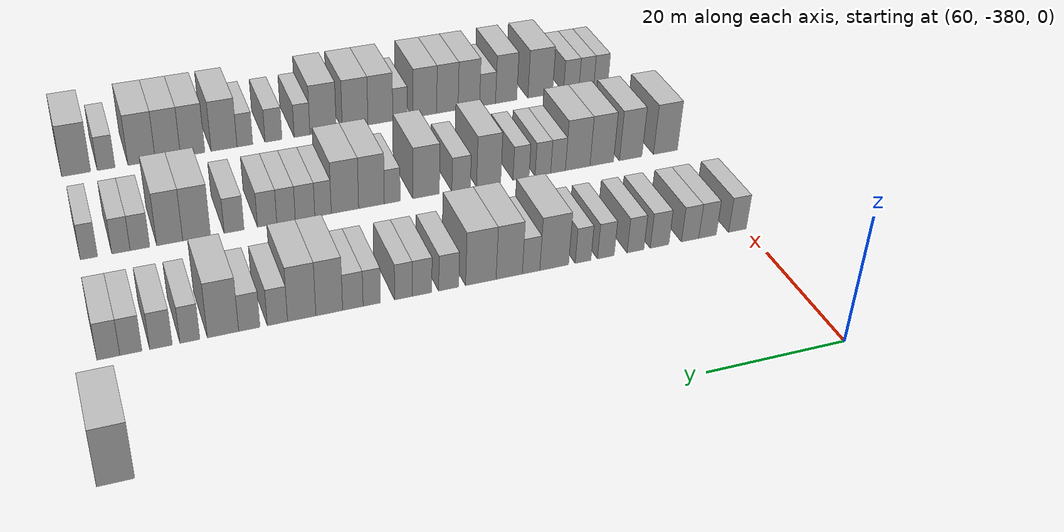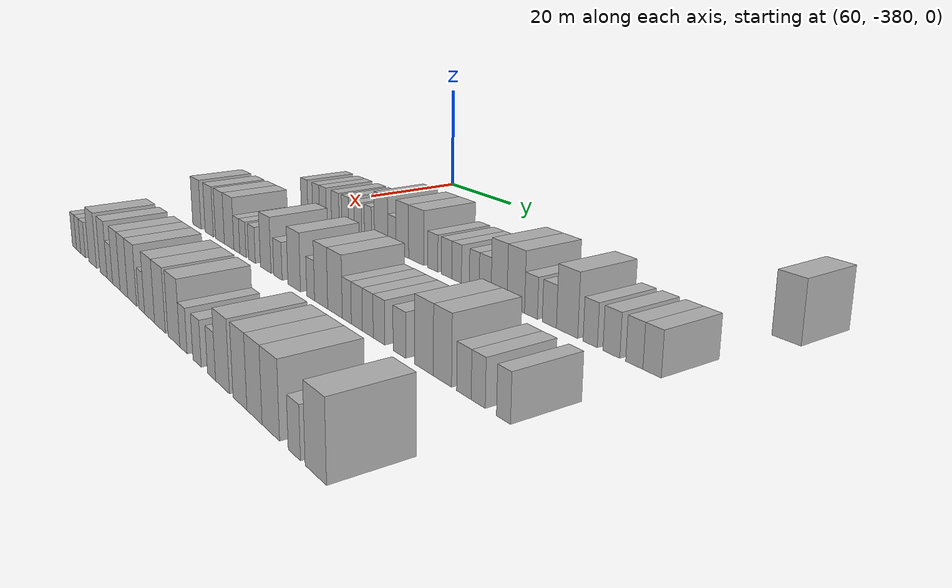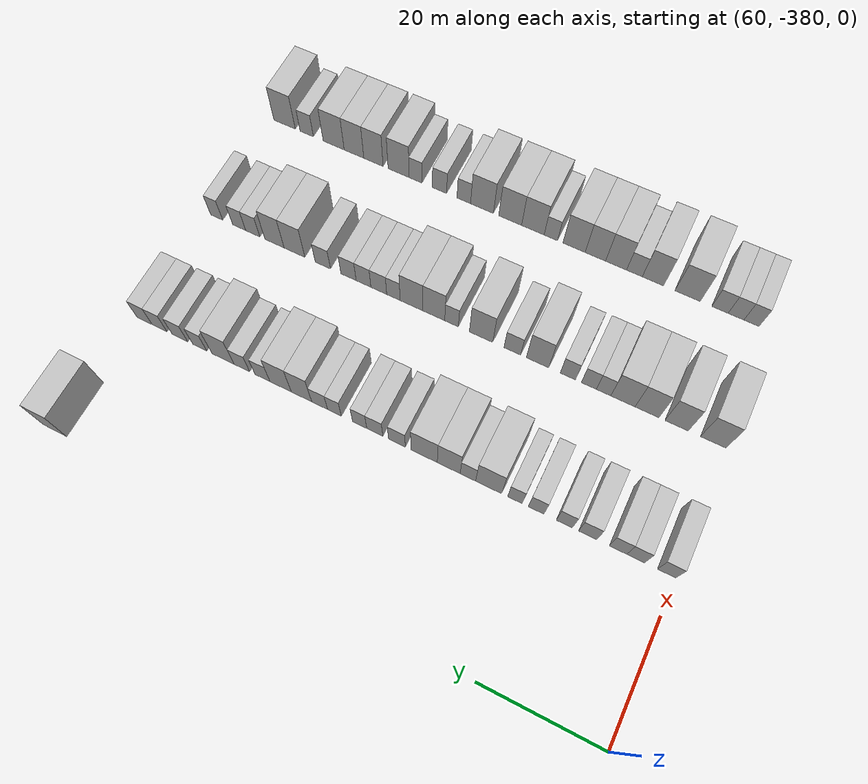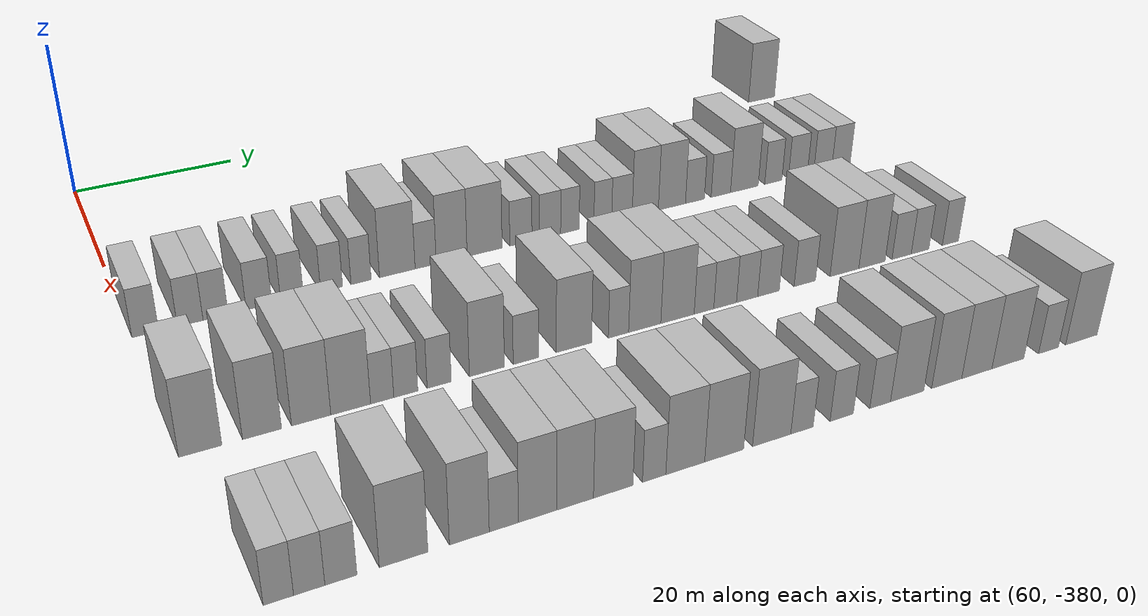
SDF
<sdf version="1.6">
 <world name="default">
  <model name="building_424">
   <static>1</static>
   <pose>69.0000 -285.8850 0 0.000000 0.000000 0.000000</pose>
   <link name="link">
    <pose>0 0 4.50 0 0 0</pose>
    <collision name="collision"><geometry><box><size>10.0000 4.4160 9.0000</size></box></geometry></collision>
    <visual name="visual">
     <cast_shadows>0</cast_shadows>
     <geometry><box><size>10.0000 4.4160 9.0000</size></box></geometry>
     <material>
      <script>
       <uri>model://HANNAS_wall/materials/scripts</uri>
       <uri>model://HANNAS_wall/materials/textures</uri>
       <name>vrc/HANNAS_wall</name>
      </script>
     </material>
    </visual>
   </link>
  </model>
  <model name="building_586">
   <static>1</static>
   <pose>91.0000 -378.5758 0 0.000000 0.000000 0.000000</pose>
   <link name="link">
    <pose>0 0 3.00 0 0 0</pose>
    <collision name="collision"><geometry><box><size>10.0000 2.8485 6.0000</size></box></geometry></collision>
    <visual name="visual">
     <cast_shadows>0</cast_shadows>
     <geometry><box><size>10.0000 2.8485 6.0000</size></box></geometry>
     <material>
      <script>
       <uri>model://HANNAS_wall/materials/scripts</uri>
       <uri>model://HANNAS_wall/materials/textures</uri>
       <name>vrc/HANNAS_wall</name>
      </script>
     </material>
    </visual>
   </link>
  </model>
  <model name="building_587">
   <static>1</static>
   <pose>91.0000 -373.7525 0 0.000000 0.000000 0.000000</pose>
   <link name="link">
    <pose>0 0 3.00 0 0 0</pose>
    <collision name="collision"><geometry><box><size>10.0000 2.7981 6.0000</size></box></geometry></collision>
    <visual name="visual">
     <cast_shadows>0</cast_shadows>
     <geometry><box><size>10.0000 2.7981 6.0000</size></box></geometry>
     <material>
      <script>
       <uri>model://HANNAS_wall/materials/scripts</uri>
       <uri>model://HANNAS_wall/materials/textures</uri>
       <name>vrc/HANNAS_wall</name>
      </script>
     </material>
    </visual>
   </link>
  </model>
  <model name="building_588">
   <static>1</static>
   <pose>91.0000 -370.9706 0 0.000000 0.000000 0.000000</pose>
   <link name="link">
    <pose>0 0 3.00 0 0 0</pose>
    <collision name="collision"><geometry><box><size>10.0000 2.7656 6.0000</size></box></geometry></collision>
    <visual name="visual">
     <cast_shadows>0</cast_shadows>
     <geometry><box><size>10.0000 2.7656 6.0000</size></box></geometry>
     <material>
      <script>
       <uri>model://HANNAS_wall/materials/scripts</uri>
       <uri>model://HANNAS_wall/materials/textures</uri>
       <name>vrc/HANNAS_wall</name>
      </script>
     </material>
    </visual>
   </link>
  </model>
  <model name="building_589">
   <static>1</static>
   <pose>91.0000 -366.1292 0 0.000000 0.000000 0.000000</pose>
   <link name="link">
    <pose>0 0 3.00 0 0 0</pose>
    <collision name="collision"><geometry><box><size>10.0000 2.9171 6.0000</size></box></geometry></collision>
    <visual name="visual">
     <cast_shadows>0</cast_shadows>
     <geometry><box><size>10.0000 2.9171 6.0000</size></box></geometry>
     <material>
      <script>
       <uri>model://HANNAS_wall/materials/scripts</uri>
       <uri>model://HANNAS_wall/materials/textures</uri>
       <name>vrc/HANNAS_wall</name>
      </script>
     </material>
    </visual>
   </link>
  </model>
  <model name="building_590">
   <static>1</static>
   <pose>91.0000 -362.3631 0 0.000000 0.000000 0.000000</pose>
   <link name="link">
    <pose>0 0 3.00 0 0 0</pose>
    <collision name="collision"><geometry><box><size>10.0000 2.6152 6.0000</size></box></geometry></collision>
    <visual name="visual">
     <cast_shadows>0</cast_shadows>
     <geometry><box><size>10.0000 2.6152 6.0000</size></box></geometry>
     <material>
      <script>
       <uri>model://HANNAS_wall/materials/scripts</uri>
       <uri>model://HANNAS_wall/materials/textures</uri>
       <name>vrc/HANNAS_wall</name>
      </script>
     </material>
    </visual>
   </link>
  </model>
  <model name="building_591">
   <static>1</static>
   <pose>91.0000 -357.7678 0 0.000000 0.000000 0.000000</pose>
   <link name="link">
    <pose>0 0 3.00 0 0 0</pose>
    <collision name="collision"><geometry><box><size>10.0000 2.5755 6.0000</size></box></geometry></collision>
    <visual name="visual">
     <cast_shadows>0</cast_shadows>
     <geometry><box><size>10.0000 2.5755 6.0000</size></box></geometry>
     <material>
      <script>
       <uri>model://HANNAS_wall/materials/scripts</uri>
       <uri>model://HANNAS_wall/materials/textures</uri>
       <name>vrc/HANNAS_wall</name>
      </script>
     </material>
    </visual>
   </link>
  </model>
  <model name="building_592">
   <static>1</static>
   <pose>91.0000 -354.2785 0 0.000000 0.000000 0.000000</pose>
   <link name="link">
    <pose>0 0 3.00 0 0 0</pose>
    <collision name="collision"><geometry><box><size>10.0000 2.4031 6.0000</size></box></geometry></collision>
    <visual name="visual">
     <cast_shadows>0</cast_shadows>
     <geometry><box><size>10.0000 2.4031 6.0000</size></box></geometry>
     <material>
      <script>
       <uri>model://HANNAS_wall/materials/scripts</uri>
       <uri>model://HANNAS_wall/materials/textures</uri>
       <name>vrc/HANNAS_wall</name>
      </script>
     </material>
    </visual>
   </link>
  </model>
  <model name="building_593">
   <static>1</static>
   <pose>91.0000 -349.9029 0 0.000000 0.000000 0.000000</pose>
   <link name="link">
    <pose>0 0 4.50 0 0 0</pose>
    <collision name="collision"><geometry><box><size>10.0000 4.3481 9.0000</size></box></geometry></collision>
    <visual name="visual">
     <cast_shadows>0</cast_shadows>
     <geometry><box><size>10.0000 4.3481 9.0000</size></box></geometry>
     <material>
      <script>
       <uri>model://HANNAS_wall/materials/scripts</uri>
       <uri>model://HANNAS_wall/materials/textures</uri>
       <name>vrc/HANNAS_wall</name>
      </script>
     </material>
    </visual>
   </link>
  </model>
  <model name="building_594">
   <static>1</static>
   <pose>91.0000 -346.4224 0 0.000000 0.000000 0.000000</pose>
   <link name="link">
    <pose>0 0 3.00 0 0 0</pose>
    <collision name="collision"><geometry><box><size>10.0000 2.6130 6.0000</size></box></geometry></collision>
    <visual name="visual">
     <cast_shadows>0</cast_shadows>
     <geometry><box><size>10.0000 2.6130 6.0000</size></box></geometry>
     <material>
      <script>
       <uri>model://HANNAS_wall/materials/scripts</uri>
       <uri>model://HANNAS_wall/materials/textures</uri>
       <name>vrc/HANNAS_wall</name>
      </script>
     </material>
    </visual>
   </link>
  </model>
  <model name="building_595">
   <static>1</static>
   <pose>91.0000 -343.1708 0 0.000000 0.000000 0.000000</pose>
   <link name="link">
    <pose>0 0 4.50 0 0 0</pose>
    <collision name="collision"><geometry><box><size>10.0000 3.8901 9.0000</size></box></geometry></collision>
    <visual name="visual">
     <cast_shadows>0</cast_shadows>
     <geometry><box><size>10.0000 3.8901 9.0000</size></box></geometry>
     <material>
      <script>
       <uri>model://HANNAS_wall/materials/scripts</uri>
       <uri>model://HANNAS_wall/materials/textures</uri>
       <name>vrc/HANNAS_wall</name>
      </script>
     </material>
    </visual>
   </link>
  </model>
  <model name="building_596">
   <static>1</static>
   <pose>91.0000 -338.9864 0 0.000000 0.000000 0.000000</pose>
   <link name="link">
    <pose>0 0 4.50 0 0 0</pose>
    <collision name="collision"><geometry><box><size>10.0000 4.4788 9.0000</size></box></geometry></collision>
    <visual name="visual">
     <cast_shadows>0</cast_shadows>
     <geometry><box><size>10.0000 4.4788 9.0000</size></box></geometry>
     <material>
      <script>
       <uri>model://HANNAS_wall/materials/scripts</uri>
       <uri>model://HANNAS_wall/materials/textures</uri>
       <name>vrc/HANNAS_wall</name>
      </script>
     </material>
    </visual>
   </link>
  </model>
  <model name="building_597">
   <static>1</static>
   <pose>91.0000 -334.2930 0 0.000000 0.000000 0.000000</pose>
   <link name="link">
    <pose>0 0 3.00 0 0 0</pose>
    <collision name="collision"><geometry><box><size>10.0000 2.9079 6.0000</size></box></geometry></collision>
    <visual name="visual">
     <cast_shadows>0</cast_shadows>
     <geometry><box><size>10.0000 2.9079 6.0000</size></box></geometry>
     <material>
      <script>
       <uri>model://HANNAS_wall/materials/scripts</uri>
       <uri>model://HANNAS_wall/materials/textures</uri>
       <name>vrc/HANNAS_wall</name>
      </script>
     </material>
    </visual>
   </link>
  </model>
  <model name="building_598">
   <static>1</static>
   <pose>91.0000 -330.4348 0 0.000000 0.000000 0.000000</pose>
   <link name="link">
    <pose>0 0 3.00 0 0 0</pose>
    <collision name="collision"><geometry><box><size>10.0000 2.8085 6.0000</size></box></geometry></collision>
    <visual name="visual">
     <cast_shadows>0</cast_shadows>
     <geometry><box><size>10.0000 2.8085 6.0000</size></box></geometry>
     <material>
      <script>
       <uri>model://HANNAS_wall/materials/scripts</uri>
       <uri>model://HANNAS_wall/materials/textures</uri>
       <name>vrc/HANNAS_wall</name>
      </script>
     </material>
    </visual>
   </link>
  </model>
  <model name="building_599">
   <static>1</static>
   <pose>91.0000 -327.7813 0 0.000000 0.000000 0.000000</pose>
   <link name="link">
    <pose>0 0 3.00 0 0 0</pose>
    <collision name="collision"><geometry><box><size>10.0000 2.4985 6.0000</size></box></geometry></collision>
    <visual name="visual">
     <cast_shadows>0</cast_shadows>
     <geometry><box><size>10.0000 2.4985 6.0000</size></box></geometry>
     <material>
      <script>
       <uri>model://HANNAS_wall/materials/scripts</uri>
       <uri>model://HANNAS_wall/materials/textures</uri>
       <name>vrc/HANNAS_wall</name>
      </script>
     </material>
    </visual>
   </link>
  </model>
  <model name="building_600">
   <static>1</static>
   <pose>91.0000 -323.3099 0 0.000000 0.000000 0.000000</pose>
   <link name="link">
    <pose>0 0 3.00 0 0 0</pose>
    <collision name="collision"><geometry><box><size>10.0000 2.4444 6.0000</size></box></geometry></collision>
    <visual name="visual">
     <cast_shadows>0</cast_shadows>
     <geometry><box><size>10.0000 2.4444 6.0000</size></box></geometry>
     <material>
      <script>
       <uri>model://HANNAS_wall/materials/scripts</uri>
       <uri>model://HANNAS_wall/materials/textures</uri>
       <name>vrc/HANNAS_wall</name>
      </script>
     </material>
    </visual>
   </link>
  </model>
  <model name="building_601">
   <static>1</static>
   <pose>91.0000 -320.6575 0 0.000000 0.000000 0.000000</pose>
   <link name="link">
    <pose>0 0 3.00 0 0 0</pose>
    <collision name="collision"><geometry><box><size>10.0000 2.8604 6.0000</size></box></geometry></collision>
    <visual name="visual">
     <cast_shadows>0</cast_shadows>
     <geometry><box><size>10.0000 2.8604 6.0000</size></box></geometry>
     <material>
      <script>
       <uri>model://HANNAS_wall/materials/scripts</uri>
       <uri>model://HANNAS_wall/materials/textures</uri>
       <name>vrc/HANNAS_wall</name>
      </script>
     </material>
    </visual>
   </link>
  </model>
  <model name="building_602">
   <static>1</static>
   <pose>91.0000 -317.3772 0 0.000000 0.000000 0.000000</pose>
   <link name="link">
    <pose>0 0 4.50 0 0 0</pose>
    <collision name="collision"><geometry><box><size>10.0000 3.7002 9.0000</size></box></geometry></collision>
    <visual name="visual">
     <cast_shadows>0</cast_shadows>
     <geometry><box><size>10.0000 3.7002 9.0000</size></box></geometry>
     <material>
      <script>
       <uri>model://HANNAS_wall/materials/scripts</uri>
       <uri>model://HANNAS_wall/materials/textures</uri>
       <name>vrc/HANNAS_wall</name>
      </script>
     </material>
    </visual>
   </link>
  </model>
  <model name="building_603">
   <static>1</static>
   <pose>91.0000 -313.5815 0 0.000000 0.000000 0.000000</pose>
   <link name="link">
    <pose>0 0 4.50 0 0 0</pose>
    <collision name="collision"><geometry><box><size>10.0000 3.8911 9.0000</size></box></geometry></collision>
    <visual name="visual">
     <cast_shadows>0</cast_shadows>
     <geometry><box><size>10.0000 3.8911 9.0000</size></box></geometry>
     <material>
      <script>
       <uri>model://HANNAS_wall/materials/scripts</uri>
       <uri>model://HANNAS_wall/materials/textures</uri>
       <name>vrc/HANNAS_wall</name>
      </script>
     </material>
    </visual>
   </link>
  </model>
  <model name="building_604">
   <static>1</static>
   <pose>91.0000 -310.2601 0 0.000000 0.000000 0.000000</pose>
   <link name="link">
    <pose>0 0 3.00 0 0 0</pose>
    <collision name="collision"><geometry><box><size>10.0000 2.7516 6.0000</size></box></geometry></collision>
    <visual name="visual">
     <cast_shadows>0</cast_shadows>
     <geometry><box><size>10.0000 2.7516 6.0000</size></box></geometry>
     <material>
      <script>
       <uri>model://HANNAS_wall/materials/scripts</uri>
       <uri>model://HANNAS_wall/materials/textures</uri>
       <name>vrc/HANNAS_wall</name>
      </script>
     </material>
    </visual>
   </link>
  </model>
  <model name="building_605">
   <static>1</static>
   <pose>91.0000 -306.4516 0 0.000000 0.000000 0.000000</pose>
   <link name="link">
    <pose>0 0 3.00 0 0 0</pose>
    <collision name="collision"><geometry><box><size>10.0000 2.8654 6.0000</size></box></geometry></collision>
    <visual name="visual">
     <cast_shadows>0</cast_shadows>
     <geometry><box><size>10.0000 2.8654 6.0000</size></box></geometry>
     <material>
      <script>
       <uri>model://HANNAS_wall/materials/scripts</uri>
       <uri>model://HANNAS_wall/materials/textures</uri>
       <name>vrc/HANNAS_wall</name>
      </script>
     </material>
    </visual>
   </link>
  </model>
  <model name="building_606">
   <static>1</static>
   <pose>91.0000 -302.9398 0 0.000000 0.000000 0.000000</pose>
   <link name="link">
    <pose>0 0 4.50 0 0 0</pose>
    <collision name="collision"><geometry><box><size>10.0000 4.1584 9.0000</size></box></geometry></collision>
    <visual name="visual">
     <cast_shadows>0</cast_shadows>
     <geometry><box><size>10.0000 4.1584 9.0000</size></box></geometry>
     <material>
      <script>
       <uri>model://HANNAS_wall/materials/scripts</uri>
       <uri>model://HANNAS_wall/materials/textures</uri>
       <name>vrc/HANNAS_wall</name>
      </script>
     </material>
    </visual>
   </link>
  </model>
  <model name="building_607">
   <static>1</static>
   <pose>91.0000 -298.5496 0 0.000000 0.000000 0.000000</pose>
   <link name="link">
    <pose>0 0 3.00 0 0 0</pose>
    <collision name="collision"><geometry><box><size>10.0000 2.6219 6.0000</size></box></geometry></collision>
    <visual name="visual">
     <cast_shadows>0</cast_shadows>
     <geometry><box><size>10.0000 2.6219 6.0000</size></box></geometry>
     <material>
      <script>
       <uri>model://HANNAS_wall/materials/scripts</uri>
       <uri>model://HANNAS_wall/materials/textures</uri>
       <name>vrc/HANNAS_wall</name>
      </script>
     </material>
    </visual>
   </link>
  </model>
  <model name="building_608">
   <static>1</static>
   <pose>91.0000 -294.7657 0 0.000000 0.000000 0.000000</pose>
   <link name="link">
    <pose>0 0 3.00 0 0 0</pose>
    <collision name="collision"><geometry><box><size>10.0000 2.9460 6.0000</size></box></geometry></collision>
    <visual name="visual">
     <cast_shadows>0</cast_shadows>
     <geometry><box><size>10.0000 2.9460 6.0000</size></box></geometry>
     <material>
      <script>
       <uri>model://HANNAS_wall/materials/scripts</uri>
       <uri>model://HANNAS_wall/materials/textures</uri>
       <name>vrc/HANNAS_wall</name>
      </script>
     </material>
    </visual>
   </link>
  </model>
  <model name="building_609">
   <static>1</static>
   <pose>91.0000 -290.8657 0 0.000000 0.000000 0.000000</pose>
   <link name="link">
    <pose>0 0 3.00 0 0 0</pose>
    <collision name="collision"><geometry><box><size>10.0000 2.8540 6.0000</size></box></geometry></collision>
    <visual name="visual">
     <cast_shadows>0</cast_shadows>
     <geometry><box><size>10.0000 2.8540 6.0000</size></box></geometry>
     <material>
      <script>
       <uri>model://HANNAS_wall/materials/scripts</uri>
       <uri>model://HANNAS_wall/materials/textures</uri>
       <name>vrc/HANNAS_wall</name>
      </script>
     </material>
    </visual>
   </link>
  </model>
  <model name="building_610">
   <static>1</static>
   <pose>91.0000 -287.9734 0 0.000000 0.000000 0.000000</pose>
   <link name="link">
    <pose>0 0 3.00 0 0 0</pose>
    <collision name="collision"><geometry><box><size>10.0000 2.9304 6.0000</size></box></geometry></collision>
    <visual name="visual">
     <cast_shadows>0</cast_shadows>
     <geometry><box><size>10.0000 2.9304 6.0000</size></box></geometry>
     <material>
      <script>
       <uri>model://HANNAS_wall/materials/scripts</uri>
       <uri>model://HANNAS_wall/materials/textures</uri>
       <name>vrc/HANNAS_wall</name>
      </script>
     </material>
    </visual>
   </link>
  </model>
  <model name="building_779">
   <static>1</static>
   <pose>113.0000 -377.9310 0 0.000000 0.000000 0.000000</pose>
   <link name="link">
    <pose>0 0 4.50 0 0 0</pose>
    <collision name="collision"><geometry><box><size>10.0000 4.1380 9.0000</size></box></geometry></collision>
    <visual name="visual">
     <cast_shadows>0</cast_shadows>
     <geometry><box><size>10.0000 4.1380 9.0000</size></box></geometry>
     <material>
      <script>
       <uri>model://HANNAS_wall/materials/scripts</uri>
       <uri>model://HANNAS_wall/materials/textures</uri>
       <name>vrc/HANNAS_wall</name>
      </script>
     </material>
    </visual>
   </link>
  </model>
  <model name="building_780">
   <static>1</static>
   <pose>113.0000 -371.9355 0 0.000000 0.000000 0.000000</pose>
   <link name="link">
    <pose>0 0 4.50 0 0 0</pose>
    <collision name="collision"><geometry><box><size>10.0000 3.8529 9.0000</size></box></geometry></collision>
    <visual name="visual">
     <cast_shadows>0</cast_shadows>
     <geometry><box><size>10.0000 3.8529 9.0000</size></box></geometry>
     <material>
      <script>
       <uri>model://HANNAS_wall/materials/scripts</uri>
       <uri>model://HANNAS_wall/materials/textures</uri>
       <name>vrc/HANNAS_wall</name>
      </script>
     </material>
    </visual>
   </link>
  </model>
  <model name="building_781">
   <static>1</static>
   <pose>113.0000 -367.0156 0 0.000000 0.000000 0.000000</pose>
   <link name="link">
    <pose>0 0 4.50 0 0 0</pose>
    <collision name="collision"><geometry><box><size>10.0000 3.9869 9.0000</size></box></geometry></collision>
    <visual name="visual">
     <cast_shadows>0</cast_shadows>
     <geometry><box><size>10.0000 3.9869 9.0000</size></box></geometry>
     <material>
      <script>
       <uri>model://HANNAS_wall/materials/scripts</uri>
       <uri>model://HANNAS_wall/materials/textures</uri>
       <name>vrc/HANNAS_wall</name>
      </script>
     </material>
    </visual>
   </link>
  </model>
  <model name="building_782">
   <static>1</static>
   <pose>113.0000 -362.9623 0 0.000000 0.000000 0.000000</pose>
   <link name="link">
    <pose>0 0 4.50 0 0 0</pose>
    <collision name="collision"><geometry><box><size>10.0000 4.1199 9.0000</size></box></geometry></collision>
    <visual name="visual">
     <cast_shadows>0</cast_shadows>
     <geometry><box><size>10.0000 4.1199 9.0000</size></box></geometry>
     <material>
      <script>
       <uri>model://HANNAS_wall/materials/scripts</uri>
       <uri>model://HANNAS_wall/materials/textures</uri>
       <name>vrc/HANNAS_wall</name>
      </script>
     </material>
    </visual>
   </link>
  </model>
  <model name="building_783">
   <static>1</static>
   <pose>113.0000 -359.6774 0 0.000000 0.000000 0.000000</pose>
   <link name="link">
    <pose>0 0 3.00 0 0 0</pose>
    <collision name="collision"><geometry><box><size>10.0000 2.4498 6.0000</size></box></geometry></collision>
    <visual name="visual">
     <cast_shadows>0</cast_shadows>
     <geometry><box><size>10.0000 2.4498 6.0000</size></box></geometry>
     <material>
      <script>
       <uri>model://HANNAS_wall/materials/scripts</uri>
       <uri>model://HANNAS_wall/materials/textures</uri>
       <name>vrc/HANNAS_wall</name>
      </script>
     </material>
    </visual>
   </link>
  </model>
  <model name="building_784">
   <static>1</static>
   <pose>113.0000 -357.1659 0 0.000000 0.000000 0.000000</pose>
   <link name="link">
    <pose>0 0 3.00 0 0 0</pose>
    <collision name="collision"><geometry><box><size>10.0000 2.5732 6.0000</size></box></geometry></collision>
    <visual name="visual">
     <cast_shadows>0</cast_shadows>
     <geometry><box><size>10.0000 2.5732 6.0000</size></box></geometry>
     <material>
      <script>
       <uri>model://HANNAS_wall/materials/scripts</uri>
       <uri>model://HANNAS_wall/materials/textures</uri>
       <name>vrc/HANNAS_wall</name>
      </script>
     </material>
    </visual>
   </link>
  </model>
  <model name="building_785">
   <static>1</static>
   <pose>113.0000 -353.5626 0 0.000000 0.000000 0.000000</pose>
   <link name="link">
    <pose>0 0 3.00 0 0 0</pose>
    <collision name="collision"><geometry><box><size>10.0000 2.6334 6.0000</size></box></geometry></collision>
    <visual name="visual">
     <cast_shadows>0</cast_shadows>
     <geometry><box><size>10.0000 2.6334 6.0000</size></box></geometry>
     <material>
      <script>
       <uri>model://HANNAS_wall/materials/scripts</uri>
       <uri>model://HANNAS_wall/materials/textures</uri>
       <name>vrc/HANNAS_wall</name>
      </script>
     </material>
    </visual>
   </link>
  </model>
  <model name="building_786">
   <static>1</static>
   <pose>113.0000 -348.2858 0 0.000000 0.000000 0.000000</pose>
   <link name="link">
    <pose>0 0 4.50 0 0 0</pose>
    <collision name="collision"><geometry><box><size>10.0000 3.9202 9.0000</size></box></geometry></collision>
    <visual name="visual">
     <cast_shadows>0</cast_shadows>
     <geometry><box><size>10.0000 3.9202 9.0000</size></box></geometry>
     <material>
      <script>
       <uri>model://HANNAS_wall/materials/scripts</uri>
       <uri>model://HANNAS_wall/materials/textures</uri>
       <name>vrc/HANNAS_wall</name>
      </script>
     </material>
    </visual>
   </link>
  </model>
  <model name="building_787">
   <static>1</static>
   <pose>113.0000 -343.8497 0 0.000000 0.000000 0.000000</pose>
   <link name="link">
    <pose>0 0 3.00 0 0 0</pose>
    <collision name="collision"><geometry><box><size>10.0000 2.9518 6.0000</size></box></geometry></collision>
    <visual name="visual">
     <cast_shadows>0</cast_shadows>
     <geometry><box><size>10.0000 2.9518 6.0000</size></box></geometry>
     <material>
      <script>
       <uri>model://HANNAS_wall/materials/scripts</uri>
       <uri>model://HANNAS_wall/materials/textures</uri>
       <name>vrc/HANNAS_wall</name>
      </script>
     </material>
    </visual>
   </link>
  </model>
  <model name="building_788">
   <static>1</static>
   <pose>113.0000 -338.2808 0 0.000000 0.000000 0.000000</pose>
   <link name="link">
    <pose>0 0 4.50 0 0 0</pose>
    <collision name="collision"><geometry><box><size>10.0000 4.1861 9.0000</size></box></geometry></collision>
    <visual name="visual">
     <cast_shadows>0</cast_shadows>
     <geometry><box><size>10.0000 4.1861 9.0000</size></box></geometry>
     <material>
      <script>
       <uri>model://HANNAS_wall/materials/scripts</uri>
       <uri>model://HANNAS_wall/materials/textures</uri>
       <name>vrc/HANNAS_wall</name>
      </script>
     </material>
    </visual>
   </link>
  </model>
  <model name="building_789">
   <static>1</static>
   <pose>113.0000 -332.9564 0 0.000000 0.000000 0.000000</pose>
   <link name="link">
    <pose>0 0 3.00 0 0 0</pose>
    <collision name="collision"><geometry><box><size>10.0000 2.4626 6.0000</size></box></geometry></collision>
    <visual name="visual">
     <cast_shadows>0</cast_shadows>
     <geometry><box><size>10.0000 2.4626 6.0000</size></box></geometry>
     <material>
      <script>
       <uri>model://HANNAS_wall/materials/scripts</uri>
       <uri>model://HANNAS_wall/materials/textures</uri>
       <name>vrc/HANNAS_wall</name>
      </script>
     </material>
    </visual>
   </link>
  </model>
  <model name="building_790">
   <static>1</static>
   <pose>113.0000 -329.7391 0 0.000000 0.000000 0.000000</pose>
   <link name="link">
    <pose>0 0 4.50 0 0 0</pose>
    <collision name="collision"><geometry><box><size>10.0000 3.9721 9.0000</size></box></geometry></collision>
    <visual name="visual">
     <cast_shadows>0</cast_shadows>
     <geometry><box><size>10.0000 3.9721 9.0000</size></box></geometry>
     <material>
      <script>
       <uri>model://HANNAS_wall/materials/scripts</uri>
       <uri>model://HANNAS_wall/materials/textures</uri>
       <name>vrc/HANNAS_wall</name>
      </script>
     </material>
    </visual>
   </link>
  </model>
  <model name="building_791">
   <static>1</static>
   <pose>113.0000 -325.6553 0 0.000000 0.000000 0.000000</pose>
   <link name="link">
    <pose>0 0 4.50 0 0 0</pose>
    <collision name="collision"><geometry><box><size>10.0000 4.1954 9.0000</size></box></geometry></collision>
    <visual name="visual">
     <cast_shadows>0</cast_shadows>
     <geometry><box><size>10.0000 4.1954 9.0000</size></box></geometry>
     <material>
      <script>
       <uri>model://HANNAS_wall/materials/scripts</uri>
       <uri>model://HANNAS_wall/materials/textures</uri>
       <name>vrc/HANNAS_wall</name>
      </script>
     </material>
    </visual>
   </link>
  </model>
  <model name="building_792">
   <static>1</static>
   <pose>113.0000 -322.3052 0 0.000000 0.000000 0.000000</pose>
   <link name="link">
    <pose>0 0 3.00 0 0 0</pose>
    <collision name="collision"><geometry><box><size>10.0000 2.5048 6.0000</size></box></geometry></collision>
    <visual name="visual">
     <cast_shadows>0</cast_shadows>
     <geometry><box><size>10.0000 2.5048 6.0000</size></box></geometry>
     <material>
      <script>
       <uri>model://HANNAS_wall/materials/scripts</uri>
       <uri>model://HANNAS_wall/materials/textures</uri>
       <name>vrc/HANNAS_wall</name>
      </script>
     </material>
    </visual>
   </link>
  </model>
  <model name="building_793">
   <static>1</static>
   <pose>113.0000 -319.5790 0 0.000000 0.000000 0.000000</pose>
   <link name="link">
    <pose>0 0 3.00 0 0 0</pose>
    <collision name="collision"><geometry><box><size>10.0000 2.9478 6.0000</size></box></geometry></collision>
    <visual name="visual">
     <cast_shadows>0</cast_shadows>
     <geometry><box><size>10.0000 2.9478 6.0000</size></box></geometry>
     <material>
      <script>
       <uri>model://HANNAS_wall/materials/scripts</uri>
       <uri>model://HANNAS_wall/materials/textures</uri>
       <name>vrc/HANNAS_wall</name>
      </script>
     </material>
    </visual>
   </link>
  </model>
  <model name="building_794">
   <static>1</static>
   <pose>113.0000 -316.7148 0 0.000000 0.000000 0.000000</pose>
   <link name="link">
    <pose>0 0 3.00 0 0 0</pose>
    <collision name="collision"><geometry><box><size>10.0000 2.7805 6.0000</size></box></geometry></collision>
    <visual name="visual">
     <cast_shadows>0</cast_shadows>
     <geometry><box><size>10.0000 2.7805 6.0000</size></box></geometry>
     <material>
      <script>
       <uri>model://HANNAS_wall/materials/scripts</uri>
       <uri>model://HANNAS_wall/materials/textures</uri>
       <name>vrc/HANNAS_wall</name>
      </script>
     </material>
    </visual>
   </link>
  </model>
  <model name="building_795">
   <static>1</static>
   <pose>113.0000 -313.8862 0 0.000000 0.000000 0.000000</pose>
   <link name="link">
    <pose>0 0 3.00 0 0 0</pose>
    <collision name="collision"><geometry><box><size>10.0000 2.8766 6.0000</size></box></geometry></collision>
    <visual name="visual">
     <cast_shadows>0</cast_shadows>
     <geometry><box><size>10.0000 2.8766 6.0000</size></box></geometry>
     <material>
      <script>
       <uri>model://HANNAS_wall/materials/scripts</uri>
       <uri>model://HANNAS_wall/materials/textures</uri>
       <name>vrc/HANNAS_wall</name>
      </script>
     </material>
    </visual>
   </link>
  </model>
  <model name="building_796">
   <static>1</static>
   <pose>113.0000 -308.9889 0 0.000000 0.000000 0.000000</pose>
   <link name="link">
    <pose>0 0 3.00 0 0 0</pose>
    <collision name="collision"><geometry><box><size>10.0000 2.9180 6.0000</size></box></geometry></collision>
    <visual name="visual">
     <cast_shadows>0</cast_shadows>
     <geometry><box><size>10.0000 2.9180 6.0000</size></box></geometry>
     <material>
      <script>
       <uri>model://HANNAS_wall/materials/scripts</uri>
       <uri>model://HANNAS_wall/materials/textures</uri>
       <name>vrc/HANNAS_wall</name>
      </script>
     </material>
    </visual>
   </link>
  </model>
  <model name="building_797">
   <static>1</static>
   <pose>113.0000 -303.5150 0 0.000000 0.000000 0.000000</pose>
   <link name="link">
    <pose>0 0 4.50 0 0 0</pose>
    <collision name="collision"><geometry><box><size>10.0000 4.0298 9.0000</size></box></geometry></collision>
    <visual name="visual">
     <cast_shadows>0</cast_shadows>
     <geometry><box><size>10.0000 4.0298 9.0000</size></box></geometry>
     <material>
      <script>
       <uri>model://HANNAS_wall/materials/scripts</uri>
       <uri>model://HANNAS_wall/materials/textures</uri>
       <name>vrc/HANNAS_wall</name>
      </script>
     </material>
    </visual>
   </link>
  </model>
  <model name="building_798">
   <static>1</static>
   <pose>113.0000 -299.6284 0 0.000000 0.000000 0.000000</pose>
   <link name="link">
    <pose>0 0 4.50 0 0 0</pose>
    <collision name="collision"><geometry><box><size>10.0000 3.7435 9.0000</size></box></geometry></collision>
    <visual name="visual">
     <cast_shadows>0</cast_shadows>
     <geometry><box><size>10.0000 3.7435 9.0000</size></box></geometry>
     <material>
      <script>
       <uri>model://HANNAS_wall/materials/scripts</uri>
       <uri>model://HANNAS_wall/materials/textures</uri>
       <name>vrc/HANNAS_wall</name>
      </script>
     </material>
    </visual>
   </link>
  </model>
  <model name="building_799">
   <static>1</static>
   <pose>113.0000 -295.3619 0 0.000000 0.000000 0.000000</pose>
   <link name="link">
    <pose>0 0 3.00 0 0 0</pose>
    <collision name="collision"><geometry><box><size>10.0000 2.7896 6.0000</size></box></geometry></collision>
    <visual name="visual">
     <cast_shadows>0</cast_shadows>
     <geometry><box><size>10.0000 2.7896 6.0000</size></box></geometry>
     <material>
      <script>
       <uri>model://HANNAS_wall/materials/scripts</uri>
       <uri>model://HANNAS_wall/materials/textures</uri>
       <name>vrc/HANNAS_wall</name>
      </script>
     </material>
    </visual>
   </link>
  </model>
  <model name="building_800">
   <static>1</static>
   <pose>113.0000 -292.6699 0 0.000000 0.000000 0.000000</pose>
   <link name="link">
    <pose>0 0 3.00 0 0 0</pose>
    <collision name="collision"><geometry><box><size>10.0000 2.5944 6.0000</size></box></geometry></collision>
    <visual name="visual">
     <cast_shadows>0</cast_shadows>
     <geometry><box><size>10.0000 2.5944 6.0000</size></box></geometry>
     <material>
      <script>
       <uri>model://HANNAS_wall/materials/scripts</uri>
       <uri>model://HANNAS_wall/materials/textures</uri>
       <name>vrc/HANNAS_wall</name>
      </script>
     </material>
    </visual>
   </link>
  </model>
  <model name="building_801">
   <static>1</static>
   <pose>113.0000 -288.1660 0 0.000000 0.000000 0.000000</pose>
   <link name="link">
    <pose>0 0 3.00 0 0 0</pose>
    <collision name="collision"><geometry><box><size>10.0000 2.4132 6.0000</size></box></geometry></collision>
    <visual name="visual">
     <cast_shadows>0</cast_shadows>
     <geometry><box><size>10.0000 2.4132 6.0000</size></box></geometry>
     <material>
      <script>
       <uri>model://HANNAS_wall/materials/scripts</uri>
       <uri>model://HANNAS_wall/materials/textures</uri>
       <name>vrc/HANNAS_wall</name>
      </script>
     </material>
    </visual>
   </link>
  </model>
  <model name="building_968">
   <static>1</static>
   <pose>135.0000 -376.7046 0 0.000000 0.000000 0.000000</pose>
   <link name="link">
    <pose>0 0 3.00 0 0 0</pose>
    <collision name="collision"><geometry><box><size>10.0000 2.5908 6.0000</size></box></geometry></collision>
    <visual name="visual">
     <cast_shadows>0</cast_shadows>
     <geometry><box><size>10.0000 2.5908 6.0000</size></box></geometry>
     <material>
      <script>
       <uri>model://HANNAS_wall/materials/scripts</uri>
       <uri>model://HANNAS_wall/materials/textures</uri>
       <name>vrc/HANNAS_wall</name>
      </script>
     </material>
    </visual>
   </link>
  </model>
  <model name="building_969">
   <static>1</static>
   <pose>135.0000 -374.0553 0 0.000000 0.000000 0.000000</pose>
   <link name="link">
    <pose>0 0 3.00 0 0 0</pose>
    <collision name="collision"><geometry><box><size>10.0000 2.7079 6.0000</size></box></geometry></collision>
    <visual name="visual">
     <cast_shadows>0</cast_shadows>
     <geometry><box><size>10.0000 2.7079 6.0000</size></box></geometry>
     <material>
      <script>
       <uri>model://HANNAS_wall/materials/scripts</uri>
       <uri>model://HANNAS_wall/materials/textures</uri>
       <name>vrc/HANNAS_wall</name>
      </script>
     </material>
    </visual>
   </link>
  </model>
  <model name="building_970">
   <static>1</static>
   <pose>135.0000 -371.2894 0 0.000000 0.000000 0.000000</pose>
   <link name="link">
    <pose>0 0 3.00 0 0 0</pose>
    <collision name="collision"><geometry><box><size>10.0000 2.8239 6.0000</size></box></geometry></collision>
    <visual name="visual">
     <cast_shadows>0</cast_shadows>
     <geometry><box><size>10.0000 2.8239 6.0000</size></box></geometry>
     <material>
      <script>
       <uri>model://HANNAS_wall/materials/scripts</uri>
       <uri>model://HANNAS_wall/materials/textures</uri>
       <name>vrc/HANNAS_wall</name>
      </script>
     </material>
    </visual>
   </link>
  </model>
  <model name="building_971">
   <static>1</static>
   <pose>135.0000 -365.6566 0 0.000000 0.000000 0.000000</pose>
   <link name="link">
    <pose>0 0 4.50 0 0 0</pose>
    <collision name="collision"><geometry><box><size>10.0000 4.4417 9.0000</size></box></geometry></collision>
    <visual name="visual">
     <cast_shadows>0</cast_shadows>
     <geometry><box><size>10.0000 4.4417 9.0000</size></box></geometry>
     <material>
      <script>
       <uri>model://HANNAS_wall/materials/scripts</uri>
       <uri>model://HANNAS_wall/materials/textures</uri>
       <name>vrc/HANNAS_wall</name>
      </script>
     </material>
    </visual>
   </link>
  </model>
  <model name="building_972">
   <static>1</static>
   <pose>135.0000 -359.5455 0 0.000000 0.000000 0.000000</pose>
   <link name="link">
    <pose>0 0 4.50 0 0 0</pose>
    <collision name="collision"><geometry><box><size>10.0000 3.7805 9.0000</size></box></geometry></collision>
    <visual name="visual">
     <cast_shadows>0</cast_shadows>
     <geometry><box><size>10.0000 3.7805 9.0000</size></box></geometry>
     <material>
      <script>
       <uri>model://HANNAS_wall/materials/scripts</uri>
       <uri>model://HANNAS_wall/materials/textures</uri>
       <name>vrc/HANNAS_wall</name>
      </script>
     </material>
    </visual>
   </link>
  </model>
  <model name="building_973">
   <static>1</static>
   <pose>135.0000 -356.2481 0 0.000000 0.000000 0.000000</pose>
   <link name="link">
    <pose>0 0 3.00 0 0 0</pose>
    <collision name="collision"><geometry><box><size>10.0000 2.8141 6.0000</size></box></geometry></collision>
    <visual name="visual">
     <cast_shadows>0</cast_shadows>
     <geometry><box><size>10.0000 2.8141 6.0000</size></box></geometry>
     <material>
      <script>
       <uri>model://HANNAS_wall/materials/scripts</uri>
       <uri>model://HANNAS_wall/materials/textures</uri>
       <name>vrc/HANNAS_wall</name>
      </script>
     </material>
    </visual>
   </link>
  </model>
  <model name="building_974">
   <static>1</static>
   <pose>135.0000 -352.9516 0 0.000000 0.000000 0.000000</pose>
   <link name="link">
    <pose>0 0 4.50 0 0 0</pose>
    <collision name="collision"><geometry><box><size>10.0000 3.7790 9.0000</size></box></geometry></collision>
    <visual name="visual">
     <cast_shadows>0</cast_shadows>
     <geometry><box><size>10.0000 3.7790 9.0000</size></box></geometry>
     <material>
      <script>
       <uri>model://HANNAS_wall/materials/scripts</uri>
       <uri>model://HANNAS_wall/materials/textures</uri>
       <name>vrc/HANNAS_wall</name>
      </script>
     </material>
    </visual>
   </link>
  </model>
  <model name="building_975">
   <static>1</static>
   <pose>135.0000 -349.2036 0 0.000000 0.000000 0.000000</pose>
   <link name="link">
    <pose>0 0 4.50 0 0 0</pose>
    <collision name="collision"><geometry><box><size>10.0000 3.7170 9.0000</size></box></geometry></collision>
    <visual name="visual">
     <cast_shadows>0</cast_shadows>
     <geometry><box><size>10.0000 3.7170 9.0000</size></box></geometry>
     <material>
      <script>
       <uri>model://HANNAS_wall/materials/scripts</uri>
       <uri>model://HANNAS_wall/materials/textures</uri>
       <name>vrc/HANNAS_wall</name>
      </script>
     </material>
    </visual>
   </link>
  </model>
  <model name="building_976">
   <static>1</static>
   <pose>135.0000 -345.3089 0 0.000000 0.000000 0.000000</pose>
   <link name="link">
    <pose>0 0 4.50 0 0 0</pose>
    <collision name="collision"><geometry><box><size>10.0000 4.0725 9.0000</size></box></geometry></collision>
    <visual name="visual">
     <cast_shadows>0</cast_shadows>
     <geometry><box><size>10.0000 4.0725 9.0000</size></box></geometry>
     <material>
      <script>
       <uri>model://HANNAS_wall/materials/scripts</uri>
       <uri>model://HANNAS_wall/materials/textures</uri>
       <name>vrc/HANNAS_wall</name>
      </script>
     </material>
    </visual>
   </link>
  </model>
  <model name="building_977">
   <static>1</static>
   <pose>135.0000 -341.0368 0 0.000000 0.000000 0.000000</pose>
   <link name="link">
    <pose>0 0 3.00 0 0 0</pose>
    <collision name="collision"><geometry><box><size>10.0000 2.4717 6.0000</size></box></geometry></collision>
    <visual name="visual">
     <cast_shadows>0</cast_shadows>
     <geometry><box><size>10.0000 2.4717 6.0000</size></box></geometry>
     <material>
      <script>
       <uri>model://HANNAS_wall/materials/scripts</uri>
       <uri>model://HANNAS_wall/materials/textures</uri>
       <name>vrc/HANNAS_wall</name>
      </script>
     </material>
    </visual>
   </link>
  </model>
  <model name="building_978">
   <static>1</static>
   <pose>135.0000 -337.6989 0 0.000000 0.000000 0.000000</pose>
   <link name="link">
    <pose>0 0 4.50 0 0 0</pose>
    <collision name="collision"><geometry><box><size>10.0000 4.2041 9.0000</size></box></geometry></collision>
    <visual name="visual">
     <cast_shadows>0</cast_shadows>
     <geometry><box><size>10.0000 4.2041 9.0000</size></box></geometry>
     <material>
      <script>
       <uri>model://HANNAS_wall/materials/scripts</uri>
       <uri>model://HANNAS_wall/materials/textures</uri>
       <name>vrc/HANNAS_wall</name>
      </script>
     </material>
    </visual>
   </link>
  </model>
  <model name="building_979">
   <static>1</static>
   <pose>135.0000 -333.4427 0 0.000000 0.000000 0.000000</pose>
   <link name="link">
    <pose>0 0 4.50 0 0 0</pose>
    <collision name="collision"><geometry><box><size>10.0000 4.3084 9.0000</size></box></geometry></collision>
    <visual name="visual">
     <cast_shadows>0</cast_shadows>
     <geometry><box><size>10.0000 4.3084 9.0000</size></box></geometry>
     <material>
      <script>
       <uri>model://HANNAS_wall/materials/scripts</uri>
       <uri>model://HANNAS_wall/materials/textures</uri>
       <name>vrc/HANNAS_wall</name>
      </script>
     </material>
    </visual>
   </link>
  </model>
  <model name="building_980">
   <static>1</static>
   <pose>135.0000 -328.1058 0 0.000000 0.000000 0.000000</pose>
   <link name="link">
    <pose>0 0 4.50 0 0 0</pose>
    <collision name="collision"><geometry><box><size>10.0000 4.3655 9.0000</size></box></geometry></collision>
    <visual name="visual">
     <cast_shadows>0</cast_shadows>
     <geometry><box><size>10.0000 4.3655 9.0000</size></box></geometry>
     <material>
      <script>
       <uri>model://HANNAS_wall/materials/scripts</uri>
       <uri>model://HANNAS_wall/materials/textures</uri>
       <name>vrc/HANNAS_wall</name>
      </script>
     </material>
    </visual>
   </link>
  </model>
  <model name="building_981">
   <static>1</static>
   <pose>135.0000 -324.6228 0 0.000000 0.000000 0.000000</pose>
   <link name="link">
    <pose>0 0 3.00 0 0 0</pose>
    <collision name="collision"><geometry><box><size>10.0000 2.6004 6.0000</size></box></geometry></collision>
    <visual name="visual">
     <cast_shadows>0</cast_shadows>
     <geometry><box><size>10.0000 2.6004 6.0000</size></box></geometry>
     <material>
      <script>
       <uri>model://HANNAS_wall/materials/scripts</uri>
       <uri>model://HANNAS_wall/materials/textures</uri>
       <name>vrc/HANNAS_wall</name>
      </script>
     </material>
    </visual>
   </link>
  </model>
  <model name="building_982">
   <static>1</static>
   <pose>135.0000 -319.9395 0 0.000000 0.000000 0.000000</pose>
   <link name="link">
    <pose>0 0 3.00 0 0 0</pose>
    <collision name="collision"><geometry><box><size>10.0000 2.7662 6.0000</size></box></geometry></collision>
    <visual name="visual">
     <cast_shadows>0</cast_shadows>
     <geometry><box><size>10.0000 2.7662 6.0000</size></box></geometry>
     <material>
      <script>
       <uri>model://HANNAS_wall/materials/scripts</uri>
       <uri>model://HANNAS_wall/materials/textures</uri>
       <name>vrc/HANNAS_wall</name>
      </script>
     </material>
    </visual>
   </link>
  </model>
  <model name="building_983">
   <static>1</static>
   <pose>135.0000 -315.2915 0 0.000000 0.000000 0.000000</pose>
   <link name="link">
    <pose>0 0 3.00 0 0 0</pose>
    <collision name="collision"><geometry><box><size>10.0000 2.5299 6.0000</size></box></geometry></collision>
    <visual name="visual">
     <cast_shadows>0</cast_shadows>
     <geometry><box><size>10.0000 2.5299 6.0000</size></box></geometry>
     <material>
      <script>
       <uri>model://HANNAS_wall/materials/scripts</uri>
       <uri>model://HANNAS_wall/materials/textures</uri>
       <name>vrc/HANNAS_wall</name>
      </script>
     </material>
    </visual>
   </link>
  </model>
  <model name="building_984">
   <static>1</static>
   <pose>135.0000 -311.9532 0 0.000000 0.000000 0.000000</pose>
   <link name="link">
    <pose>0 0 4.50 0 0 0</pose>
    <collision name="collision"><geometry><box><size>10.0000 4.1467 9.0000</size></box></geometry></collision>
    <visual name="visual">
     <cast_shadows>0</cast_shadows>
     <geometry><box><size>10.0000 4.1467 9.0000</size></box></geometry>
     <material>
      <script>
       <uri>model://HANNAS_wall/materials/scripts</uri>
       <uri>model://HANNAS_wall/materials/textures</uri>
       <name>vrc/HANNAS_wall</name>
      </script>
     </material>
    </visual>
   </link>
  </model>
  <model name="building_985">
   <static>1</static>
   <pose>135.0000 -306.9568 0 0.000000 0.000000 0.000000</pose>
   <link name="link">
    <pose>0 0 4.50 0 0 0</pose>
    <collision name="collision"><geometry><box><size>10.0000 3.8461 9.0000</size></box></geometry></collision>
    <visual name="visual">
     <cast_shadows>0</cast_shadows>
     <geometry><box><size>10.0000 3.8461 9.0000</size></box></geometry>
     <material>
      <script>
       <uri>model://HANNAS_wall/materials/scripts</uri>
       <uri>model://HANNAS_wall/materials/textures</uri>
       <name>vrc/HANNAS_wall</name>
      </script>
     </material>
    </visual>
   </link>
  </model>
  <model name="building_986">
   <static>1</static>
   <pose>135.0000 -303.0597 0 0.000000 0.000000 0.000000</pose>
   <link name="link">
    <pose>0 0 4.50 0 0 0</pose>
    <collision name="collision"><geometry><box><size>10.0000 3.9481 9.0000</size></box></geometry></collision>
    <visual name="visual">
     <cast_shadows>0</cast_shadows>
     <geometry><box><size>10.0000 3.9481 9.0000</size></box></geometry>
     <material>
      <script>
       <uri>model://HANNAS_wall/materials/scripts</uri>
       <uri>model://HANNAS_wall/materials/textures</uri>
       <name>vrc/HANNAS_wall</name>
      </script>
     </material>
    </visual>
   </link>
  </model>
  <model name="building_987">
   <static>1</static>
   <pose>135.0000 -298.9584 0 0.000000 0.000000 0.000000</pose>
   <link name="link">
    <pose>0 0 4.50 0 0 0</pose>
    <collision name="collision"><geometry><box><size>10.0000 4.2545 9.0000</size></box></geometry></collision>
    <visual name="visual">
     <cast_shadows>0</cast_shadows>
     <geometry><box><size>10.0000 4.2545 9.0000</size></box></geometry>
     <material>
      <script>
       <uri>model://HANNAS_wall/materials/scripts</uri>
       <uri>model://HANNAS_wall/materials/textures</uri>
       <name>vrc/HANNAS_wall</name>
      </script>
     </material>
    </visual>
   </link>
  </model>
  <model name="building_988">
   <static>1</static>
   <pose>135.0000 -293.4680 0 0.000000 0.000000 0.000000</pose>
   <link name="link">
    <pose>0 0 3.00 0 0 0</pose>
    <collision name="collision"><geometry><box><size>10.0000 2.7263 6.0000</size></box></geometry></collision>
    <visual name="visual">
     <cast_shadows>0</cast_shadows>
     <geometry><box><size>10.0000 2.7263 6.0000</size></box></geometry>
     <material>
      <script>
       <uri>model://HANNAS_wall/materials/scripts</uri>
       <uri>model://HANNAS_wall/materials/textures</uri>
       <name>vrc/HANNAS_wall</name>
      </script>
     </material>
    </visual>
   </link>
  </model>
  <model name="building_989">
   <static>1</static>
   <pose>135.0000 -288.8971 0 0.000000 0.000000 0.000000</pose>
   <link name="link">
    <pose>0 0 4.50 0 0 0</pose>
    <collision name="collision"><geometry><box><size>10.0000 4.4156 9.0000</size></box></geometry></collision>
    <visual name="visual">
     <cast_shadows>0</cast_shadows>
     <geometry><box><size>10.0000 4.4156 9.0000</size></box></geometry>
     <material>
      <script>
       <uri>model://HANNAS_wall/materials/scripts</uri>
       <uri>model://HANNAS_wall/materials/textures</uri>
       <name>vrc/HANNAS_wall</name>
      </script>
     </material>
    </visual>
   </link>
  </model>
 </world>
</sdf>
